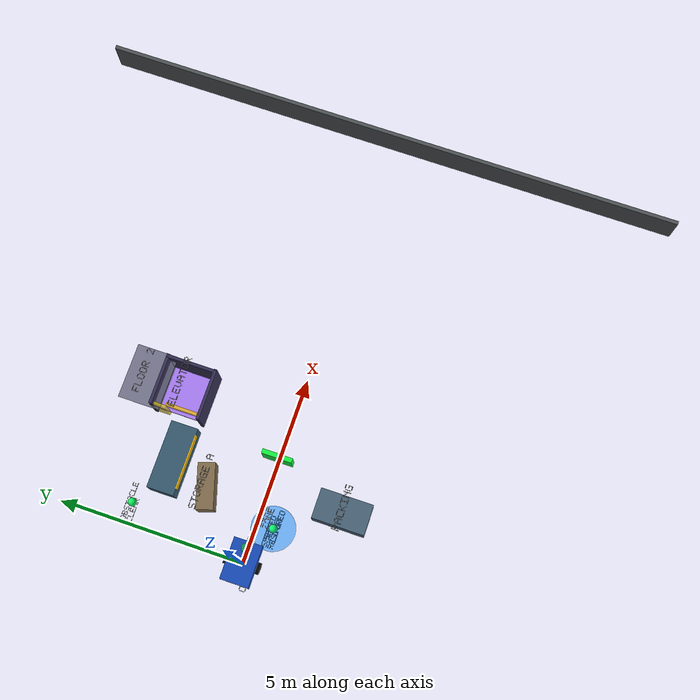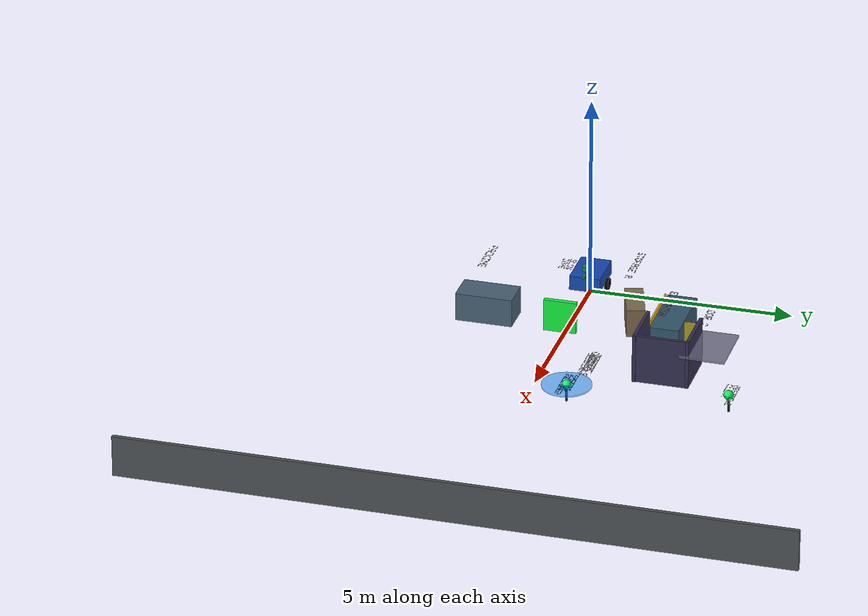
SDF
<sdf version="1.9">
 <world name="factory_patrol">
  <model name="factory_patrol_equipment_area">
   <static>true</static>
   <pose>1.9 2.55 0.34 0 0 0</pose>
   <link name="link">
    <collision name="equipment_bank_collision">
     <geometry><box><size>1.8 0.72 0.68</size></box></geometry>
    </collision>
    <visual name="equipment_bank_visual">
     <geometry><box><size>1.8 0.72 0.68</size></box></geometry>
     <material><diffuse>0.20 0.34 0.42 1</diffuse></material>
    </visual>
    <visual name="equipment_warning_panel">
     <pose>0 -0.38 0.32 0 0 0</pose>
     <geometry><box><size>1.45 0.035 0.24</size></box></geometry>
     <material><diffuse>0.95 0.72 0.08 1</diffuse><emissive>0.18 0.10 0.00 1</emissive></material>
    </visual>
   </link>
  </model>
  <model name="geometry_validation_target">
   <static>true</static>
   <pose>2.76 0 0.66 0 0 0</pose>
   <link name="target_link">
    <visual name="target_visual">
     <geometry><box><size>0.12 0.80 0.80</size></box></geometry>
     <material>
      <ambient>0.08 0.80 0.20 1</ambient>
      <diffuse>0.08 0.95 0.25 1</diffuse>
      <emissive>0.02 0.18 0.04 1</emissive>
     </material>
    </visual>
   </link>
  </model>
  <model name="east_wall">
   <static>true</static>
   <pose>12 0 0.5 0 0 0</pose>
   <link name="link">
    <collision name="c"><geometry><box><size>0.1 16 1</size></box></geometry></collision>
    <visual name="v">
     <geometry><box><size>0.1 16 1</size></box></geometry>
     <material><diffuse>0.30 0.32 0.33 1</diffuse></material>
    </visual>
   </link>
  </model>
  <model name="storage_rack_1">
   <static>true</static>
   <pose>1.5 1.5 0.35 0 0 0.3</pose>
   <link name="link">
    <collision name="c"><geometry><box><size>1.2 0.45 0.7</size></box></geometry></collision>
    <visual name="v">
     <geometry><box><size>1.2 0.45 0.7</size></box></geometry>
     <material><diffuse>0.50 0.42 0.30 1</diffuse></material>
    </visual>
   </link>
  </model>
  <model name="packing_table">
   <static>true</static>
   <pose>2 -2 0.35 0 0 0.0</pose>
   <link name="link">
    <collision name="c"><geometry><box><size>0.8 1.4 0.7</size></box></geometry></collision>
    <visual name="v">
     <geometry><box><size>0.8 1.4 0.7</size></box></geometry>
     <material><diffuse>0.28 0.38 0.46 1</diffuse></material>
    </visual>
   </link>
  </model>
  <model name="freight_elevator">
   <static>true</static>
   <pose>3.65 2.85 0 0 0 0</pose>
   <link name="link">
    <visual name="back_wall_visual">
     <pose>0.62 0 0.6 0 0 0</pose>
     <geometry><box><size>0.08 1.35 1.2</size></box></geometry>
     <material><diffuse>0.20 0.18 0.32 1</diffuse></material>
    </visual>
    <visual name="left_wall_visual">
     <pose>0 -0.64 0.6 0 0 0</pose>
     <geometry><box><size>1.35 0.08 1.2</size></box></geometry>
     <material><diffuse>0.20 0.18 0.32 1</diffuse></material>
    </visual>
    <visual name="right_wall_visual">
     <pose>0 0.64 0.6 0 0 0</pose>
     <geometry><box><size>1.35 0.08 1.2</size></box></geometry>
     <material><diffuse>0.20 0.18 0.32 1</diffuse></material>
    </visual>
    <visual name="door_open_visual">
     <pose>-0.62 0.42 0.55 0 0 0</pose>
     <geometry><box><size>0.08 0.32 1.0</size></box></geometry>
     <material><diffuse>0.85 0.75 0.12 0.75</diffuse></material>
    </visual>
   </link>
  </model>
  <model name="freight_elevator_cabin">
   <static>false</static>
   <pose>3.65 2.85 0.04 0 0 0</pose>
   <link name="link">
    <gravity>false</gravity>
    <visual name="platform_visual">
     <geometry><box><size>1.15 1.15 0.08</size></box></geometry>
     <material><diffuse>0.65 0.48 0.95 0.95</diffuse></material>
    </visual>
    <visual name="indicator_visual">
     <pose>-0.45 0 0.18 0 0 0</pose>
     <geometry><box><size>0.08 0.85 0.22</size></box></geometry>
     <material><diffuse>0.95 0.75 0.12 0.85</diffuse><emissive>0.45 0.28 0.02 1</emissive></material>
    </visual>
   </link>
  </model>
  <model name="floor_2_dropoff_zone">
   <static>true</static>
   <pose>3.65 3.85 0.82 0 0 0</pose>
   <link name="link">
    <visual name="platform_visual">
     <geometry><box><size>1.45 1.1 0.06</size></box></geometry>
     <material><diffuse>0.42 0.42 0.52 0.85</diffuse></material>
    </visual>
   </link>
  </model>
  <model name="speed_limit_zone_indicator">
   <static>false</static>
   <pose>1.2 -0.25 -2 0 0 0</pose>
   <link name="link">
    <gravity>false</gravity>
    <visual name="slow_zone_visual">
     <geometry><cylinder><radius>0.62</radius><length>0.05</length></cylinder></geometry>
     <material><diffuse>0.08 0.55 1.0 0.55</diffuse><emissive>0.02 0.16 0.38 1</emissive></material>
    </visual>
   </link>
  </model>
  <model name="speed_limit_restored_beacon">
   <static>false</static>
   <pose>1.2 -0.25 -2 0 0 0</pose>
   <link name="link">
    <gravity>false</gravity>
    <visual name="restore_visual">
     <geometry><sphere><radius>0.12</radius></sphere></geometry>
     <material><diffuse>0.05 0.95 0.45 0.95</diffuse><emissive>0.02 0.55 0.20 1</emissive></material>
    </visual>
    <visual name="speed_bar_visual">
     <pose>0 0 -0.22 0 0 0</pose>
     <geometry><cylinder><radius>0.03</radius><length>0.44</length></cylinder></geometry>
     <material><diffuse>0.08 0.08 0.09 1</diffuse></material>
    </visual>
   </link>
  </model>
  <model name="obstacle_clearance_indicator">
   <static>false</static>
   <pose>0.65 3.65 -2 0 0 0</pose>
   <link name="link">
    <gravity>false</gravity>
    <visual name="clear_visual">
     <geometry><sphere><radius>0.12</radius></sphere></geometry>
     <material><diffuse>0.05 0.95 0.35 0.95</diffuse><emissive>0.02 0.55 0.12 1</emissive></material>
    </visual>
    <visual name="base_visual">
     <pose>0 0 -0.22 0 0 0</pose>
     <geometry><cylinder><radius>0.03</radius><length>0.44</length></cylinder></geometry>
     <material><diffuse>0.08 0.08 0.09 1</diffuse></material>
    </visual>
   </link>
  </model>
  <model name="label_elevator">
   <static>false</static>
   <pose>3.65 2.85 1.80 0 0 0.00</pose>
   <link name="link">
    <gravity>false</gravity>
    <visual name="text_mesh_visual">
     <cast_shadows>false</cast_shadows>
     <geometry><mesh><uri>../media/text_meshes/label_elevator.obj</uri></mesh></geometry>
     <material>
      <ambient>0.000 0.000 0.000 1</ambient>
      <diffuse>0.000 0.000 0.000 1</diffuse>
      <emissive>0 0 0 1</emissive>
      <double_sided>true</double_sided>
     </material>
    </visual>
   </link>
  </model>
  <model name="label_floor_2">
   <static>false</static>
   <pose>3.65 3.85 1.65 0 0 0.00</pose>
   <link name="link">
    <gravity>false</gravity>
    <visual name="text_mesh_visual">
     <cast_shadows>false</cast_shadows>
     <geometry><mesh><uri>../media/text_meshes/label_floor_2.obj</uri></mesh></geometry>
     <material>
      <ambient>0.000 0.000 0.000 1</ambient>
      <diffuse>0.000 0.000 0.000 1</diffuse>
      <emissive>0 0 0 1</emissive>
      <double_sided>true</double_sided>
     </material>
    </visual>
   </link>
  </model>
  <model name="label_storage_a">
   <static>false</static>
   <pose>1.50 1.50 1.60 0 0 0.00</pose>
   <link name="link">
    <gravity>false</gravity>
    <visual name="text_mesh_visual">
     <cast_shadows>false</cast_shadows>
     <geometry><mesh><uri>../media/text_meshes/label_storage_a.obj</uri></mesh></geometry>
     <material>
      <ambient>0.000 0.000 0.000 1</ambient>
      <diffuse>0.000 0.000 0.000 1</diffuse>
      <emissive>0 0 0 1</emissive>
      <double_sided>true</double_sided>
     </material>
    </visual>
   </link>
  </model>
  <model name="label_packing">
   <static>false</static>
   <pose>2.00 -2.00 1.60 0 0 0.00</pose>
   <link name="link">
    <gravity>false</gravity>
    <visual name="text_mesh_visual">
     <cast_shadows>false</cast_shadows>
     <geometry><mesh><uri>../media/text_meshes/label_packing.obj</uri></mesh></geometry>
     <material>
      <ambient>0.000 0.000 0.000 1</ambient>
      <diffuse>0.000 0.000 0.000 1</diffuse>
      <emissive>0 0 0 1</emissive>
      <double_sided>true</double_sided>
     </material>
    </visual>
   </link>
  </model>
  <model name="label_slow_zone">
   <static>false</static>
   <pose>1.20 -0.25 1.25 0 0 0.00</pose>
   <link name="link">
    <gravity>false</gravity>
    <visual name="text_mesh_visual">
     <cast_shadows>false</cast_shadows>
     <geometry><mesh><uri>../media/text_meshes/label_slow_zone.obj</uri></mesh></geometry>
     <material>
      <ambient>0.000 0.000 0.000 1</ambient>
      <diffuse>0.000 0.000 0.000 1</diffuse>
      <emissive>0 0 0 1</emissive>
      <double_sided>true</double_sided>
     </material>
    </visual>
   </link>
  </model>
  <model name="label_traffic_deadlock_status">
   <static>false</static>
   <pose>0.00 0.00 -2 0 0 0.00</pose>
   <link name="link">
    <gravity>false</gravity>
    <visual name="text_mesh_visual">
     <cast_shadows>false</cast_shadows>
     <geometry><mesh><uri>../media/text_meshes/label_traffic_deadlock_status.obj</uri></mesh></geometry>
     <material>
      <ambient>0.000 0.000 0.000 1</ambient>
      <diffuse>0.000 0.000 0.000 1</diffuse>
      <emissive>0 0 0 1</emissive>
      <double_sided>true</double_sided>
     </material>
    </visual>
   </link>
  </model>
  <model name="label_traffic_reopen_status">
   <static>false</static>
   <pose>0.00 0.00 -2 0 0 0.00</pose>
   <link name="link">
    <gravity>false</gravity>
    <visual name="text_mesh_visual">
     <cast_shadows>false</cast_shadows>
     <geometry><mesh><uri>../media/text_meshes/label_traffic_reopen_status.obj</uri></mesh></geometry>
     <material>
      <ambient>0.000 0.000 0.000 1</ambient>
      <diffuse>0.000 0.000 0.000 1</diffuse>
      <emissive>0 0 0 1</emissive>
      <double_sided>true</double_sided>
     </material>
    </visual>
   </link>
  </model>
  <model name="label_speed_limit_status">
   <static>false</static>
   <pose>1.20 -0.25 -2 0 0 0.00</pose>
   <link name="link">
    <gravity>false</gravity>
    <visual name="text_mesh_visual">
     <cast_shadows>false</cast_shadows>
     <geometry><mesh><uri>../media/text_meshes/label_speed_limit_status.obj</uri></mesh></geometry>
     <material>
      <ambient>0.000 0.000 0.000 1</ambient>
      <diffuse>0.000 0.000 0.000 1</diffuse>
      <emissive>0 0 0 1</emissive>
      <double_sided>true</double_sided>
     </material>
    </visual>
   </link>
  </model>
  <model name="label_speed_restored_status">
   <static>false</static>
   <pose>1.20 -0.25 -2 0 0 0.00</pose>
   <link name="link">
    <gravity>false</gravity>
    <visual name="text_mesh_visual">
     <cast_shadows>false</cast_shadows>
     <geometry><mesh><uri>../media/text_meshes/label_speed_restored_status.obj</uri></mesh></geometry>
     <material>
      <ambient>0.000 0.000 0.000 1</ambient>
      <diffuse>0.000 0.000 0.000 1</diffuse>
      <emissive>0 0 0 1</emissive>
      <double_sided>true</double_sided>
     </material>
    </visual>
   </link>
  </model>
  <model name="label_obstacle_status">
   <static>false</static>
   <pose>0.00 0.00 -2 0 0 0.00</pose>
   <link name="link">
    <gravity>false</gravity>
    <visual name="text_mesh_visual">
     <cast_shadows>false</cast_shadows>
     <geometry><mesh><uri>../media/text_meshes/label_obstacle_status.obj</uri></mesh></geometry>
     <material>
      <ambient>0.000 0.000 0.000 1</ambient>
      <diffuse>0.000 0.000 0.000 1</diffuse>
      <emissive>0 0 0 1</emissive>
      <double_sided>true</double_sided>
     </material>
    </visual>
   </link>
  </model>
  <model name="label_obstacle_clear_status">
   <static>false</static>
   <pose>0.65 3.65 -2 0 0 0.00</pose>
   <link name="link">
    <gravity>false</gravity>
    <visual name="text_mesh_visual">
     <cast_shadows>false</cast_shadows>
     <geometry><mesh><uri>../media/text_meshes/label_obstacle_clear_status.obj</uri></mesh></geometry>
     <material>
      <ambient>0.000 0.000 0.000 1</ambient>
      <diffuse>0.000 0.000 0.000 1</diffuse>
      <emissive>0 0 0 1</emissive>
      <double_sided>true</double_sided>
     </material>
    </visual>
   </link>
  </model>
  <model name="mobile_robot">
   <pose>0 0 0.24 0 0 0</pose>
   <link name="base_link">
    <inertial><mass>24.0</mass><inertia><ixx>0.18</ixx><iyy>0.28</iyy><izz>0.36</izz></inertia></inertial>
    <collision name="base_collision">
     <pose>0 0 0.18 0 0 0</pose>
     <geometry><box><size>1.10 0.76 0.36</size></box></geometry>
    </collision>
    <visual name="base_visual">
     <pose>0 0 0.18 0 0 0</pose>
     <geometry><box><size>1.10 0.76 0.36</size></box></geometry>
     <material><diffuse>0.08 0.28 0.70 1</diffuse></material>
    </visual>
    <visual name="lidar_visual">
     <pose>0.36 0 0.54 0 0 0</pose>
     <geometry><cylinder><radius>0.11</radius><length>0.11</length></cylinder></geometry>
     <material><diffuse>0.05 0.55 0.32 1</diffuse></material>
    </visual>
    <visual name="camera_visual">
     <pose>0.58 0 0.42 0 0 0</pose>
     <geometry><box><size>0.14 0.07 0.07</size></box></geometry>
     <material><diffuse>0.05 0.55 0.32 1</diffuse></material>
    </visual>
    <sensor name="lidar" type="gpu_lidar">
     <pose>0.36 0 0.54 0 0 0</pose>
     <topic>/sim/scan</topic>
     <update_rate>10</update_rate>
     <always_on>true</always_on>
     <lidar>
      <scan>
       <horizontal>
        <samples>360</samples>
        <resolution>1</resolution>
        <min_angle>-3.14159265359</min_angle>
        <max_angle>3.14159265359</max_angle>
       </horizontal>
      </scan>
      <range><min>0.08</min><max>12.0</max><resolution>0.01</resolution></range>
     </lidar>
    </sensor>
    <sensor name="imu" type="imu">
     <pose>0 0 0.46 0 0 0</pose>
     <topic>/sim/imu</topic>
     <update_rate>100</update_rate>
     <always_on>true</always_on>
    </sensor>
    <sensor name="rgbd_camera" type="rgbd_camera">
     <pose>0.58 0 0.42 0 0 0</pose>
     <topic>/camera</topic>
     <gz_frame_id>camera_color_optical_frame</gz_frame_id>
     <update_rate>15</update_rate>
     <always_on>true</always_on>
     <visualize>false</visualize>
     <camera>
      <horizontal_fov>1.0471975512</horizontal_fov>
      <image><width>640</width><height>480</height></image>
      <clip><near>0.1</near><far>10.0</far></clip>
      <optical_frame_id>camera_color_optical_frame</optical_frame_id>
     </camera>
    </sensor>
   </link>
   <link name="left_wheel">
    <pose>0 0.43 0 1.57079632679 0 0</pose>
    <inertial><mass>0.7</mass><inertia><ixx>0.002</ixx><iyy>0.002</iyy><izz>0.002</izz></inertia></inertial>
    <collision name="collision">
     <geometry><cylinder><radius>0.15</radius><length>0.09</length></cylinder></geometry>
    </collision>
    <visual name="visual">
     <geometry><cylinder><radius>0.15</radius><length>0.09</length></cylinder></geometry>
     <material><diffuse>0.02 0.02 0.02 1</diffuse></material>
    </visual>
   </link>
   <link name="right_wheel">
    <pose>0 -0.43 0 1.57079632679 0 0</pose>
    <inertial><mass>0.7</mass><inertia><ixx>0.002</ixx><iyy>0.002</iyy><izz>0.002</izz></inertia></inertial>
    <collision name="collision">
     <geometry><cylinder><radius>0.15</radius><length>0.09</length></cylinder></geometry>
    </collision>
    <visual name="visual">
     <geometry><cylinder><radius>0.15</radius><length>0.09</length></cylinder></geometry>
     <material><diffuse>0.02 0.02 0.02 1</diffuse></material>
    </visual>
   </link>
   <link name="caster_wheel">
    <pose>-0.4 0 -0.08 0 0 0</pose>
    <collision name="collision"><geometry><sphere><radius>0.08</radius></sphere></geometry></collision>
    <visual name="visual">
     <geometry><sphere><radius>0.08</radius></sphere></geometry>
     <material><diffuse>0.02 0.02 0.02 1</diffuse></material>
    </visual>
   </link>
   <joint name="left_wheel_joint" type="revolute">
    <parent>base_link</parent>
    <child>left_wheel</child>
    <axis><xyz>0 1 0</xyz></axis>
   </joint>
   <joint name="right_wheel_joint" type="revolute">
    <parent>base_link</parent>
    <child>right_wheel</child>
    <axis><xyz>0 1 0</xyz></axis>
   </joint>
   <joint name="caster_joint" type="fixed"><parent>base_link</parent><child>caster_wheel</child></joint>
   <plugin filename="gz-sim-diff-drive-system" name="gz::sim::systems::DiffDrive">
    <left_joint>left_wheel_joint</left_joint>
    <right_joint>right_wheel_joint</right_joint>
    <wheel_separation>0.86</wheel_separation>
    <wheel_radius>0.15</wheel_radius>
    <topic>/cmd_vel</topic>
    <odom_topic>/model/mobile_robot/odometry</odom_topic>
    <frame_id>odom</frame_id>
    <child_frame_id>base_link</child_frame_id>
   </plugin>
  </model>
 </world>
</sdf>
